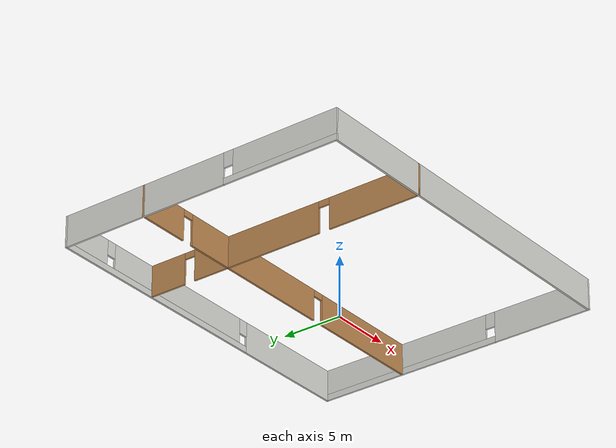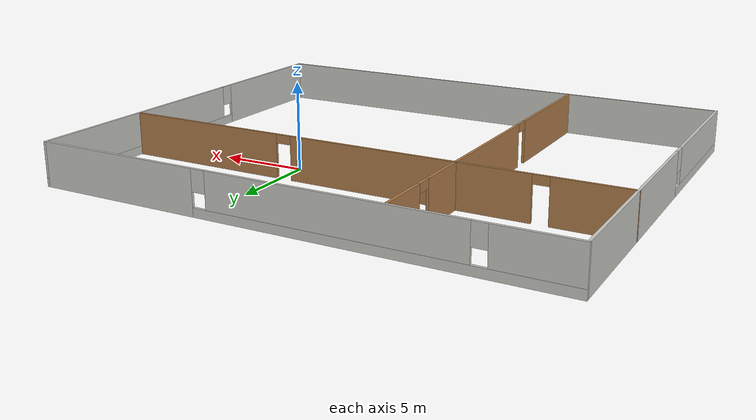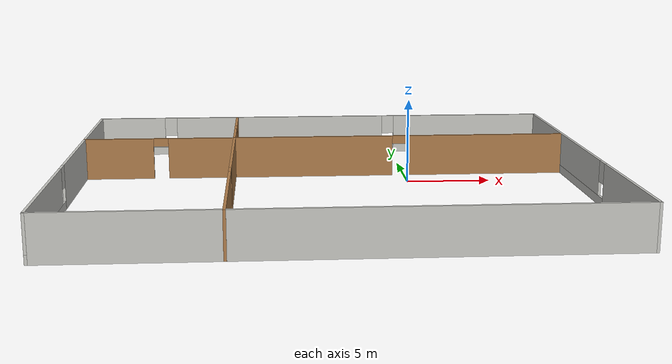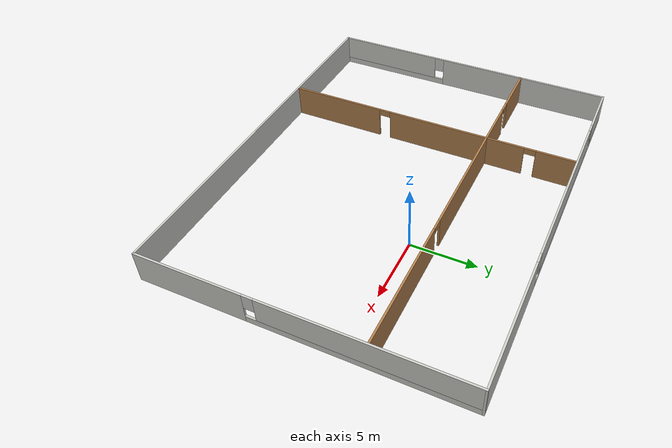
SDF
<?xml version='1.0'?>
<sdf version='1.7'>
  <model name='house_schematics'>
    <pose>-4.80218 -2.96214 0 0 -0 0</pose>
    <link name='Wall_0'>
      <pose>-14.8 0.007089 0 0 -0 -1.5708</pose>
      <visual name='Wall_0_Visual_0'>
        <pose>-4.80797 0 1.25 0 -0 0</pose>
        <geometry>
          <box>
            <size>14.1341 0.15 2.5</size>
          </box>
        </geometry>
        <material>
          <script>
            <uri>file://media/materials/scripts/gazebo.material</uri>
            <name>Gazebo/CeilingTiled</name>
          </script>
          <ambient>1 1 1 1</ambient>
        </material>
        <meta>
          <layer>0</layer>
        </meta>
      </visual>
      <collision name='Wall_0_Collision_0'>
        <geometry>
          <box>
            <size>14.1341 0.15 2.5</size>
          </box>
        </geometry>
        <pose>-4.80797 0 1.25 0 -0 0</pose>
      </collision>
      <visual name='Wall_0_Visual_1'>
        <pose>7.06703 0 0.25 0 -0 0</pose>
        <geometry>
          <box>
            <size>9.61595 0.15 0.5</size>
          </box>
        </geometry>
        <material>
          <script>
            <uri>file://media/materials/scripts/gazebo.material</uri>
            <name>Gazebo/CeilingTiled</name>
          </script>
          <ambient>1 1 1 1</ambient>
        </material>
        <meta>
          <layer>0</layer>
        </meta>
      </visual>
      <collision name='Wall_0_Collision_1'>
        <geometry>
          <box>
            <size>9.61595 0.15 0.5</size>
          </box>
        </geometry>
        <pose>7.06703 0 0.25 0 -0 0</pose>
      </collision>
      <visual name='Wall_0_Visual_2'>
        <pose>7.46702 0 1.5 0 -0 0</pose>
        <geometry>
          <box>
            <size>8.81595 0.15 2</size>
          </box>
        </geometry>
        <material>
          <script>
            <uri>file://media/materials/scripts/gazebo.material</uri>
            <name>Gazebo/CeilingTiled</name>
          </script>
          <ambient>1 1 1 1</ambient>
        </material>
        <meta>
          <layer>0</layer>
        </meta>
      </visual>
      <collision name='Wall_0_Collision_2'>
        <geometry>
          <box>
            <size>8.81595 0.15 2</size>
          </box>
        </geometry>
        <pose>7.46702 0 1.5 0 -0 0</pose>
      </collision>
      <visual name='Wall_0_Visual_3'>
        <pose>2.65905 0 1.9 0 -0 0</pose>
        <geometry>
          <box>
            <size>0.8 0.15 1.2</size>
          </box>
        </geometry>
        <material>
          <script>
            <uri>file://media/materials/scripts/gazebo.material</uri>
            <name>Gazebo/CeilingTiled</name>
          </script>
          <ambient>1 1 1 1</ambient>
        </material>
        <meta>
          <layer>0</layer>
        </meta>
      </visual>
      <collision name='Wall_0_Collision_3'>
        <geometry>
          <box>
            <size>0.8 0.15 1.2</size>
          </box>
        </geometry>
        <pose>2.65905 0 1.9 0 -0 0</pose>
      </collision>
    </link>
    <link name='Wall_1'>
      <collision name='Wall_1_Collision'>
        <geometry>
          <box>
            <size>29.75 0.15 2.5</size>
          </box>
        </geometry>
        <pose>0 0 1.25 0 -0 0</pose>
      </collision>
      <visual name='Wall_1_Visual'>
        <pose>0 0 1.25 0 -0 0</pose>
        <geometry>
          <box>
            <size>29.75 0.15 2.5</size>
          </box>
        </geometry>
        <material>
          <script>
            <uri>file://media/materials/scripts/gazebo.material</uri>
            <name>Gazebo/CeilingTiled</name>
          </script>
          <ambient>1 1 1 1</ambient>
        </material>
        <meta>
          <layer>0</layer>
        </meta>
      </visual>
      <pose>0 -11.7929 0 0 -0 0</pose>
    </link>
    <link name='Wall_10'>
      <pose>-5.7 -3.50709 0 0 -0 -1.5708</pose>
      <visual name='Wall_10_Visual_0'>
        <pose>-4.28631 0 1.25 0 -0 0</pose>
        <geometry>
          <box>
            <size>8.17737 0.15 2.5</size>
          </box>
        </geometry>
        <material>
          <script>
            <uri>file://media/materials/scripts/gazebo.material</uri>
            <name>Gazebo/Wood</name>
          </script>
          <ambient>1 1 1 1</ambient>
        </material>
        <meta>
          <layer>0</layer>
        </meta>
      </visual>
      <collision name='Wall_10_Collision_0'>
        <geometry>
          <box>
            <size>8.17737 0.15 2.5</size>
          </box>
        </geometry>
        <pose>-4.28631 0 1.25 0 -0 0</pose>
      </collision>
      <visual name='Wall_10_Visual_1'>
        <pose>4.53869 0 1.25 0 -0 0</pose>
        <geometry>
          <box>
            <size>7.67263 0.15 2.5</size>
          </box>
        </geometry>
        <material>
          <script>
            <uri>file://media/materials/scripts/gazebo.material</uri>
            <name>Gazebo/Wood</name>
          </script>
          <ambient>1 1 1 1</ambient>
        </material>
        <meta>
          <layer>0</layer>
        </meta>
      </visual>
      <collision name='Wall_10_Collision_1'>
        <geometry>
          <box>
            <size>7.67263 0.15 2.5</size>
          </box>
        </geometry>
        <pose>4.53869 0 1.25 0 -0 0</pose>
      </collision>
      <visual name='Wall_10_Visual_2'>
        <pose>0.252375 0 2.25 0 -0 0</pose>
        <geometry>
          <box>
            <size>0.9 0.15 0.5</size>
          </box>
        </geometry>
        <material>
          <script>
            <uri>file://media/materials/scripts/gazebo.material</uri>
            <name>Gazebo/Wood</name>
          </script>
          <ambient>1 1 1 1</ambient>
        </material>
        <meta>
          <layer>0</layer>
        </meta>
      </visual>
      <collision name='Wall_10_Collision_2'>
        <geometry>
          <box>
            <size>0.9 0.15 0.5</size>
          </box>
        </geometry>
        <pose>0.252375 0 2.25 0 -0 0</pose>
      </collision>
    </link>
    <link name='Wall_12'>
      <pose>4.475 4.79291 0 0 -0 0</pose>
      <visual name='Wall_12_Visual_0'>
        <pose>-5.32762 0 1.25 0 -0 0</pose>
        <geometry>
          <box>
            <size>9.84475 0.15 2.5</size>
          </box>
        </geometry>
        <material>
          <script>
            <uri>file://media/materials/scripts/gazebo.material</uri>
            <name>Gazebo/Wood</name>
          </script>
          <ambient>1 1 1 1</ambient>
        </material>
        <meta>
          <layer>0</layer>
        </meta>
      </visual>
      <collision name='Wall_12_Collision_0'>
        <geometry>
          <box>
            <size>9.84475 0.15 2.5</size>
          </box>
        </geometry>
        <pose>-5.32762 0 1.25 0 -0 0</pose>
      </collision>
      <visual name='Wall_12_Visual_1'>
        <pose>5.37238 0 1.25 0 -0 0</pose>
        <geometry>
          <box>
            <size>9.75525 0.15 2.5</size>
          </box>
        </geometry>
        <material>
          <script>
            <uri>file://media/materials/scripts/gazebo.material</uri>
            <name>Gazebo/Wood</name>
          </script>
          <ambient>1 1 1 1</ambient>
        </material>
        <meta>
          <layer>0</layer>
        </meta>
      </visual>
      <collision name='Wall_12_Collision_1'>
        <geometry>
          <box>
            <size>9.75525 0.15 2.5</size>
          </box>
        </geometry>
        <pose>5.37238 0 1.25 0 -0 0</pose>
      </collision>
      <visual name='Wall_12_Visual_2'>
        <pose>0.044753 0 2.25 0 -0 0</pose>
        <geometry>
          <box>
            <size>0.9 0.15 0.5</size>
          </box>
        </geometry>
        <material>
          <script>
            <uri>file://media/materials/scripts/gazebo.material</uri>
            <name>Gazebo/Wood</name>
          </script>
          <ambient>1 1 1 1</ambient>
        </material>
        <meta>
          <layer>0</layer>
        </meta>
      </visual>
      <collision name='Wall_12_Collision_2'>
        <geometry>
          <box>
            <size>0.9 0.15 0.5</size>
          </box>
        </geometry>
        <pose>0.044753 0 2.25 0 -0 0</pose>
      </collision>
    </link>
    <link name='Wall_2'>
      <pose>14.8 0.007089 0 0 -0 1.5708</pose>
      <visual name='Wall_2_Visual_0'>
        <pose>-7.77466 0 1.25 0 -0 0</pose>
        <geometry>
          <box>
            <size>8.20067 0.15 2.5</size>
          </box>
        </geometry>
        <material>
          <script>
            <uri>file://media/materials/scripts/gazebo.material</uri>
            <name>Gazebo/CeilingTiled</name>
          </script>
          <ambient>1 1 1 1</ambient>
        </material>
        <meta>
          <layer>0</layer>
        </meta>
      </visual>
      <collision name='Wall_2_Collision_0'>
        <geometry>
          <box>
            <size>8.20067 0.15 2.5</size>
          </box>
        </geometry>
        <pose>-7.77466 0 1.25 0 -0 0</pose>
      </collision>
      <visual name='Wall_2_Visual_1'>
        <pose>4.10034 0 0.25 0 -0 0</pose>
        <geometry>
          <box>
            <size>15.5493 0.15 0.5</size>
          </box>
        </geometry>
        <material>
          <script>
            <uri>file://media/materials/scripts/gazebo.material</uri>
            <name>Gazebo/CeilingTiled</name>
          </script>
          <ambient>1 1 1 1</ambient>
        </material>
        <meta>
          <layer>0</layer>
        </meta>
      </visual>
      <collision name='Wall_2_Collision_1'>
        <geometry>
          <box>
            <size>15.5493 0.15 0.5</size>
          </box>
        </geometry>
        <pose>4.10034 0 0.25 0 -0 0</pose>
      </collision>
      <visual name='Wall_2_Visual_2'>
        <pose>4.50033 0 1.5 0 -0 0</pose>
        <geometry>
          <box>
            <size>14.7493 0.15 2</size>
          </box>
        </geometry>
        <material>
          <script>
            <uri>file://media/materials/scripts/gazebo.material</uri>
            <name>Gazebo/CeilingTiled</name>
          </script>
          <ambient>1 1 1 1</ambient>
        </material>
        <meta>
          <layer>0</layer>
        </meta>
      </visual>
      <collision name='Wall_2_Collision_2'>
        <geometry>
          <box>
            <size>14.7493 0.15 2</size>
          </box>
        </geometry>
        <pose>4.50033 0 1.5 0 -0 0</pose>
      </collision>
      <visual name='Wall_2_Visual_3'>
        <pose>-3.27433 0 1.9 0 -0 0</pose>
        <geometry>
          <box>
            <size>0.8 0.15 1.2</size>
          </box>
        </geometry>
        <material>
          <script>
            <uri>file://media/materials/scripts/gazebo.material</uri>
            <name>Gazebo/CeilingTiled</name>
          </script>
          <ambient>1 1 1 1</ambient>
        </material>
        <meta>
          <layer>0</layer>
        </meta>
      </visual>
      <collision name='Wall_2_Collision_3'>
        <geometry>
          <box>
            <size>0.8 0.15 1.2</size>
          </box>
        </geometry>
        <pose>-3.27433 0 1.9 0 -0 0</pose>
      </collision>
    </link>
    <link name='Wall_3'>
      <pose>0 11.8071 0 0 -0 3.14159</pose>
      <visual name='Wall_3_Visual_0'>
        <pose>-9.92814 0 1.25 0 -0 0</pose>
        <geometry>
          <box>
            <size>9.89372 0.15 2.5</size>
          </box>
        </geometry>
        <material>
          <script>
            <uri>file://media/materials/scripts/gazebo.material</uri>
            <name>Gazebo/CeilingTiled</name>
          </script>
          <ambient>1 1 1 1</ambient>
        </material>
        <meta>
          <layer>0</layer>
        </meta>
      </visual>
      <collision name='Wall_3_Collision_0'>
        <geometry>
          <box>
            <size>9.89372 0.15 2.5</size>
          </box>
        </geometry>
        <pose>-9.92814 0 1.25 0 -0 0</pose>
      </collision>
      <visual name='Wall_3_Visual_1'>
        <pose>4.94686 0 0.25 0 -0 0</pose>
        <geometry>
          <box>
            <size>19.8563 0.15 0.5</size>
          </box>
        </geometry>
        <material>
          <script>
            <uri>file://media/materials/scripts/gazebo.material</uri>
            <name>Gazebo/CeilingTiled</name>
          </script>
          <ambient>1 1 1 1</ambient>
        </material>
        <meta>
          <layer>0</layer>
        </meta>
      </visual>
      <collision name='Wall_3_Collision_1'>
        <geometry>
          <box>
            <size>19.8563 0.15 0.5</size>
          </box>
        </geometry>
        <pose>4.94686 0 0.25 0 -0 0</pose>
      </collision>
      <visual name='Wall_3_Visual_2'>
        <pose>2.80206 0 1.5 0 -0 0</pose>
        <geometry>
          <box>
            <size>13.9667 0.15 2</size>
          </box>
        </geometry>
        <material>
          <script>
            <uri>file://media/materials/scripts/gazebo.material</uri>
            <name>Gazebo/CeilingTiled</name>
          </script>
          <ambient>1 1 1 1</ambient>
        </material>
        <meta>
          <layer>0</layer>
        </meta>
      </visual>
      <collision name='Wall_3_Collision_2'>
        <geometry>
          <box>
            <size>13.9667 0.15 2</size>
          </box>
        </geometry>
        <pose>2.80206 0 1.5 0 -0 0</pose>
      </collision>
      <visual name='Wall_3_Visual_3'>
        <pose>12.7302 0 1.5 0 -0 0</pose>
        <geometry>
          <box>
            <size>4.28959 0.15 2</size>
          </box>
        </geometry>
        <material>
          <script>
            <uri>file://media/materials/scripts/gazebo.material</uri>
            <name>Gazebo/CeilingTiled</name>
          </script>
          <ambient>1 1 1 1</ambient>
        </material>
        <meta>
          <layer>0</layer>
        </meta>
      </visual>
      <collision name='Wall_3_Collision_3'>
        <geometry>
          <box>
            <size>4.28959 0.15 2</size>
          </box>
        </geometry>
        <pose>12.7302 0 1.5 0 -0 0</pose>
      </collision>
      <visual name='Wall_3_Visual_4'>
        <pose>-4.58128 0 1.9 0 -0 0</pose>
        <geometry>
          <box>
            <size>0.8 0.15 1.2</size>
          </box>
        </geometry>
        <material>
          <script>
            <uri>file://media/materials/scripts/gazebo.material</uri>
            <name>Gazebo/CeilingTiled</name>
          </script>
          <ambient>1 1 1 1</ambient>
        </material>
        <meta>
          <layer>0</layer>
        </meta>
      </visual>
      <collision name='Wall_3_Collision_4'>
        <geometry>
          <box>
            <size>0.8 0.15 1.2</size>
          </box>
        </geometry>
        <pose>-4.58128 0 1.9 0 -0 0</pose>
      </collision>
      <visual name='Wall_3_Visual_5'>
        <pose>10.1854 0 1.9 0 -0 0</pose>
        <geometry>
          <box>
            <size>0.8 0.15 1.2</size>
          </box>
        </geometry>
        <material>
          <script>
            <uri>file://media/materials/scripts/gazebo.material</uri>
            <name>Gazebo/CeilingTiled</name>
          </script>
          <ambient>1 1 1 1</ambient>
        </material>
        <meta>
          <layer>0</layer>
        </meta>
      </visual>
      <collision name='Wall_3_Collision_5'>
        <geometry>
          <box>
            <size>0.8 0.15 1.2</size>
          </box>
        </geometry>
        <pose>10.1854 0 1.9 0 -0 0</pose>
      </collision>
    </link>
    <link name='Wall_5'>
      <pose>-10.25 4.79291 0 0 -0 0</pose>
      <visual name='Wall_5_Visual_0'>
        <pose>-2.50521 0 1.25 0 -0 0</pose>
        <geometry>
          <box>
            <size>4.23959 0.15 2.5</size>
          </box>
        </geometry>
        <material>
          <script>
            <uri>file://media/materials/scripts/gazebo.material</uri>
            <name>Gazebo/Wood</name>
          </script>
          <ambient>1 1 1 1</ambient>
        </material>
        <meta>
          <layer>0</layer>
        </meta>
      </visual>
      <collision name='Wall_5_Collision_0'>
        <geometry>
          <box>
            <size>4.23959 0.15 2.5</size>
          </box>
        </geometry>
        <pose>-2.50521 0 1.25 0 -0 0</pose>
      </collision>
      <visual name='Wall_5_Visual_1'>
        <pose>2.5698 0 1.25 0 -0 0</pose>
        <geometry>
          <box>
            <size>4.11041 0.15 2.5</size>
          </box>
        </geometry>
        <material>
          <script>
            <uri>file://media/materials/scripts/gazebo.material</uri>
            <name>Gazebo/Wood</name>
          </script>
          <ambient>1 1 1 1</ambient>
        </material>
        <meta>
          <layer>0</layer>
        </meta>
      </visual>
      <collision name='Wall_5_Collision_1'>
        <geometry>
          <box>
            <size>4.11041 0.15 2.5</size>
          </box>
        </geometry>
        <pose>2.5698 0 1.25 0 -0 0</pose>
      </collision>
      <visual name='Wall_5_Visual_2'>
        <pose>0.06459 0 2.25 0 -0 0</pose>
        <geometry>
          <box>
            <size>0.9 0.15 0.5</size>
          </box>
        </geometry>
        <material>
          <script>
            <uri>file://media/materials/scripts/gazebo.material</uri>
            <name>Gazebo/Wood</name>
          </script>
          <ambient>1 1 1 1</ambient>
        </material>
        <meta>
          <layer>0</layer>
        </meta>
      </visual>
      <collision name='Wall_5_Collision_2'>
        <geometry>
          <box>
            <size>0.9 0.15 0.5</size>
          </box>
        </geometry>
        <pose>0.06459 0 2.25 0 -0 0</pose>
      </collision>
    </link>
    <link name='Wall_6'>
      <pose>-5.7 8.21791 0 0 -0 1.5708</pose>
      <visual name='Wall_6_Visual_0'>
        <pose>-1.96472 0 1.25 0 -0 0</pose>
        <geometry>
          <box>
            <size>3.07056 0.15 2.5</size>
          </box>
        </geometry>
        <material>
          <script>
            <uri>file://media/materials/scripts/gazebo.material</uri>
            <name>Gazebo/Wood</name>
          </script>
          <ambient>1 1 1 1</ambient>
        </material>
        <meta>
          <layer>0</layer>
        </meta>
      </visual>
      <collision name='Wall_6_Collision_0'>
        <geometry>
          <box>
            <size>3.07056 0.15 2.5</size>
          </box>
        </geometry>
        <pose>-1.96472 0 1.25 0 -0 0</pose>
      </collision>
      <visual name='Wall_6_Visual_1'>
        <pose>1.98528 0 1.25 0 -0 0</pose>
        <geometry>
          <box>
            <size>3.02944 0.15 2.5</size>
          </box>
        </geometry>
        <material>
          <script>
            <uri>file://media/materials/scripts/gazebo.material</uri>
            <name>Gazebo/Wood</name>
          </script>
          <ambient>1 1 1 1</ambient>
        </material>
        <meta>
          <layer>0</layer>
        </meta>
      </visual>
      <collision name='Wall_6_Collision_1'>
        <geometry>
          <box>
            <size>3.02944 0.15 2.5</size>
          </box>
        </geometry>
        <pose>1.98528 0 1.25 0 -0 0</pose>
      </collision>
      <visual name='Wall_6_Visual_2'>
        <pose>0.020561 0 2.25 0 -0 0</pose>
        <geometry>
          <box>
            <size>0.9 0.15 0.5</size>
          </box>
        </geometry>
        <material>
          <script>
            <uri>file://media/materials/scripts/gazebo.material</uri>
            <name>Gazebo/Wood</name>
          </script>
          <ambient>1 1 1 1</ambient>
        </material>
        <meta>
          <layer>0</layer>
        </meta>
      </visual>
      <collision name='Wall_6_Collision_2'>
        <geometry>
          <box>
            <size>0.9 0.15 0.5</size>
          </box>
        </geometry>
        <pose>0.020561 0 2.25 0 -0 0</pose>
      </collision>
    </link>
    <static>1</static>
  </model>
</sdf>
